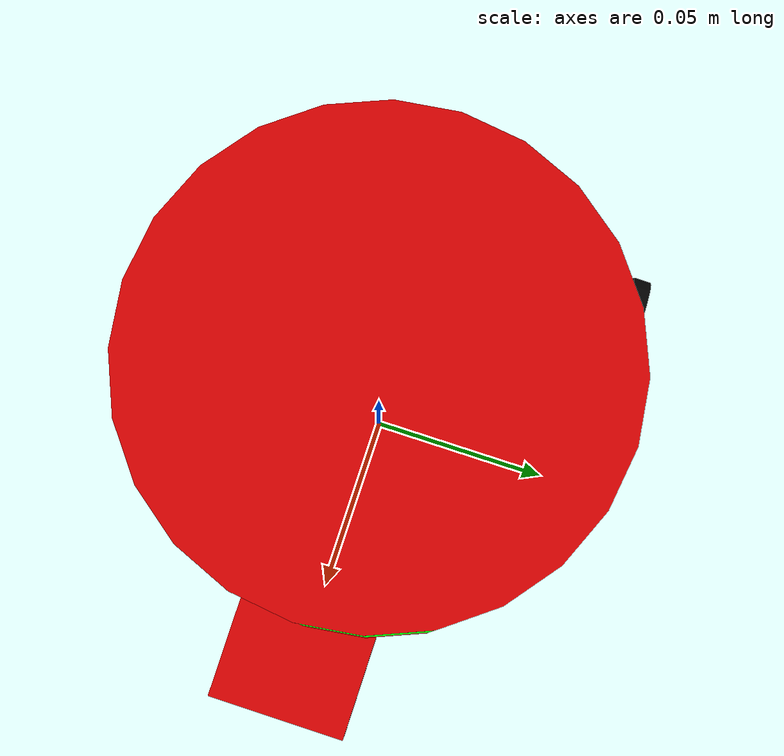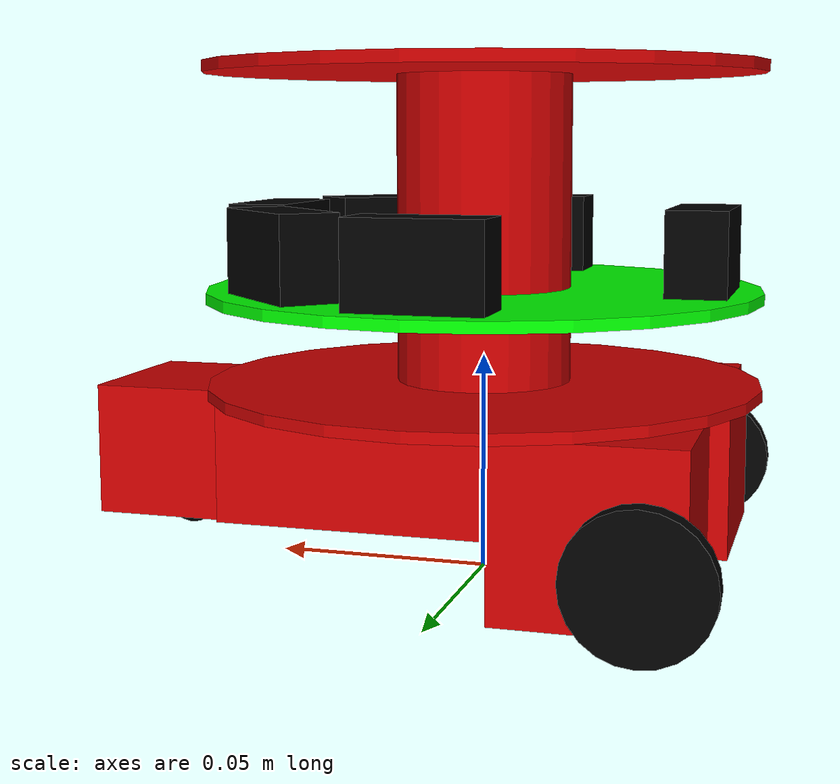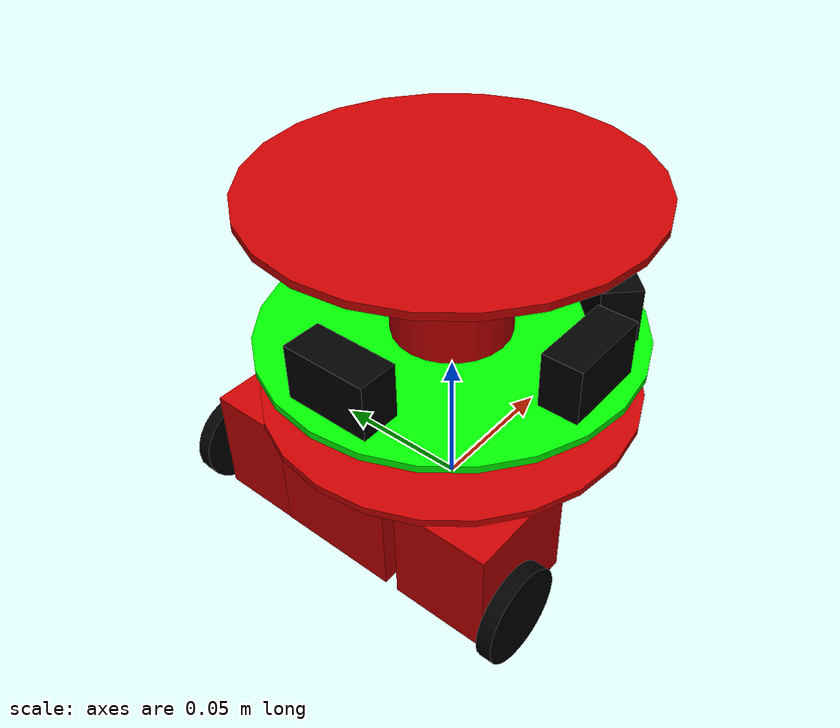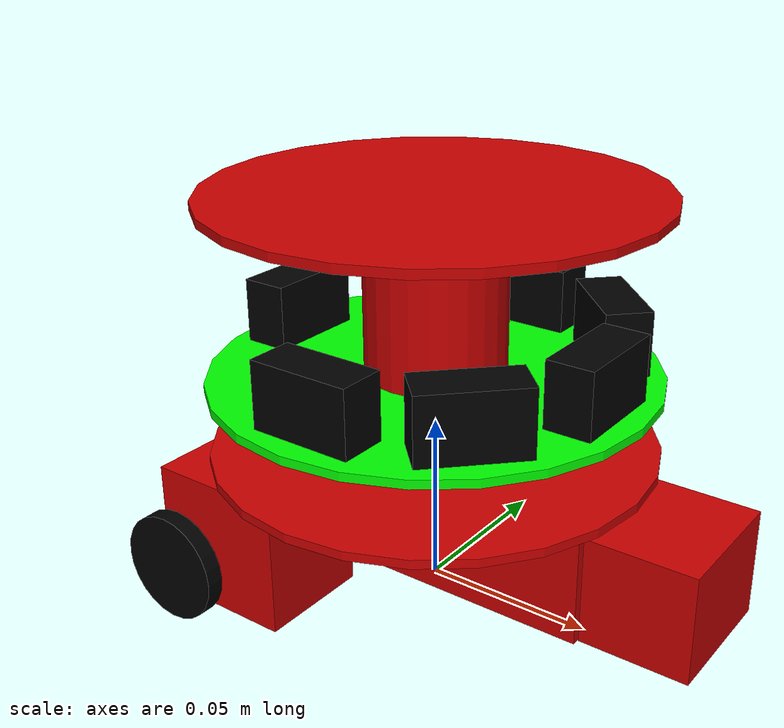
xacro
<?xml version="1.0"?>
<robot name="pheeno" xmlns:xacro="http://www.ros.org/wiki/xacro">

  <!-- Include other parts. -->
  <xacro:include filename="wheel.urdf.xacro"/>
  <xacro:include filename="pillar.urdf.xacro"/>
  <xacro:include filename="ir_sensor.urdf.xacro"/>

  <!-- Colors used in this robot -->
  <material name="Black">
    <color rgba="0.0 0.0 0.0 1.0"/>
  </material>

  <material name="Red">
    <color rgba="0.8 0.0 0.0 1.0"/>
  </material>

  <material name="White">
    <color rgba="1.0 1.0 1.0 1.0"/>
  </material>

  <material name="Green">
    <color rgba="0.0 1.0 0.0 1.0"/>
  </material>

  <!-- Universal Values -->
  <xacro:property name="PI" value="3.14159265358979"/>

  <!-- Property List (ff = fixed frame) -->
  <xacro:property name="base_plate_height" value="0.0025"/>
  <xacro:property name="base_plate_radius" value="0.0635"/>
  <xacro:property name="base_plate_mass" value=".035"/> <!-- kg -->
  <xacro:property name="base_plate_ff_x" value="0"/>
  <xacro:property name="base_plate_ff_y" value="0"/>
  <xacro:property name="base_plate_ff_z" value="0"/>
  <xacro:property name="base_plate_ff_roll" value="0"/> <!-- rad -->
  <xacro:property name="base_plate_ff_pitch" value="0"/> <!-- rad -->
  <xacro:property name="base_plate_ff_yaw" value="0"/> <!-- rad -->

  <xacro:property name="pcb_plate_height" value="0.0025"/>
  <xacro:property name="pcb_plate_radius" value="0.0635"/>
  <xacro:property name="pcb_plate_mass" value="0.085"/>
  <xacro:property name="pcb_plate_ff_x" value="0"/>
  <xacro:property name="pcb_plate_ff_y" value="0"/>
  <xacro:property name="pcb_plate_ff_z" value="0.0215"/>
  <xacro:property name="pcb_plate_ff_roll" value="0"/>
  <xacro:property name="pcb_plate_ff_pitch" value="0"/>
  <xacro:property name="pcb_plate_ff_yaw" value="0"/>

  <xacro:property name="top_plate_height" value="0.0025"/>
  <xacro:property name="top_plate_radius" value="0.0635"/>
  <xacro:property name="top_plate_mass" value="0.035"/>
  <xacro:property name="top_plate_ff_x" value="0"/>
  <xacro:property name="top_plate_ff_y" value="0"/>
  <xacro:property name="top_plate_ff_z" value="0.0723"/>
  <xacro:property name="top_plate_ff_roll" value="0"/>
  <xacro:property name="top_plate_ff_pitch" value="0"/>
  <xacro:property name="top_plate_ff_yaw" value="0"/>

  <!-- Pillar Bottom -->
  <xacro:property name="bottom_pillar_length" value="0.019"/>
  <xacro:property name="bottom_pillar_x" value="0"/>
  <xacro:property name="bottom_pillar_y" value="0"/>
  <xacro:property name="bottom_pillar_z" value="0.0108"/>
  <xacro:property name="bottom_pillar_roll" value="0"/>
  <xacro:property name="bottom_pillar_pitch" value="0"/>
  <xacro:property name="bottom_pillar_yaw" value="0"/>

  <!-- Pillar Top -->
  <xacro:property name="top_pillar_length" value="0.0483"/>
  <xacro:property name="top_pillar_x" value="0"/>
  <xacro:property name="top_pillar_y" value="0"/>
  <xacro:property name="top_pillar_z" value="0.047"/>
  <xacro:property name="top_pillar_roll" value="0"/>
  <xacro:property name="top_pillar_pitch" value="0"/>
  <xacro:property name="top_pillar_yaw" value="0"/>

  <xacro:property name="motor_plank_length" value="0.12"/>
  <xacro:property name="motor_plank_width" value="0.025"/>
  <xacro:property name="motor_plank_height" value="0.003"/>
  <xacro:property name="motor_plank_ff_x" value="-0.045"/>
  <xacro:property name="motor_plank_ff_y" value="0"/>
  <xacro:property name="motor_plank_ff_z" value="-0.003"/>
  <xacro:property name="motor_plank_ff_roll" value="0"/>
  <xacro:property name="motor_plank_ff_pitch" value="0"/>
  <xacro:property name="motor_plank_ff_yaw" value="${PI / 2}"/>

  <xacro:property name="battery_tray_length" value="0.117"/>
  <xacro:property name="battery_tray_width" value="0.042"/>
  <xacro:property name="battery_tray_height" value="0.0305"/>
  <xacro:property name="battery_tray_ff_x" value="0"/>
  <xacro:property name="battery_tray_ff_y" value="0"/>
  <xacro:property name="battery_tray_ff_z" value="-0.0165"/>
  <xacro:property name="battery_tray_ff_roll" value="0"/>
  <xacro:property name="battery_tray_ff_pitch" value="0"/>
  <xacro:property name="battery_tray_ff_yaw" value="0"/>

  <xacro:property name="motor_base_R_length" value="0.04"/>
  <xacro:property name="motor_base_R_width" value="0.033"/>
  <xacro:property name="motor_base_R_height" value="0.038"/>
  <xacro:property name="motor_base_R_ff_x" value="-0.0343"/>
  <xacro:property name="motor_base_R_ff_y" value="0.038"/>
  <xacro:property name="motor_base_R_ff_z" value="-0.0203"/>
  <xacro:property name="motor_base_R_ff_roll" value="0"/>
  <xacro:property name="motor_base_R_ff_pitch" value="0"/>
  <xacro:property name="motor_base_R_ff_yaw" value="0"/>

  <xacro:property name="motor_base_L_length" value="0.04"/>
  <xacro:property name="motor_base_L_width" value="0.033"/>
  <xacro:property name="motor_base_L_height" value="0.038"/>
  <xacro:property name="motor_base_L_ff_x" value="-0.0343"/>
  <xacro:property name="motor_base_L_ff_y" value="-0.038"/>
  <xacro:property name="motor_base_L_ff_z" value="-0.0203"/>
  <xacro:property name="motor_base_L_ff_roll" value="0"/>
  <xacro:property name="motor_base_L_ff_pitch" value="0"/>
  <xacro:property name="motor_base_L_ff_yaw" value="0"/>

  <xacro:property name="caster_base_length" value="0.0305"/>
  <xacro:property name="caster_base_width" value="0.0381"/>
  <xacro:property name="caster_base_height" value="0.0305"/>
  <xacro:property name="caster_base_ff_x" value="0.074"/>
  <xacro:property name="caster_base_ff_y" value="0"/>
  <xacro:property name="caster_base_ff_z" value="-0.0165"/>
  <xacro:property name="caster_base_ff_roll" value="0"/>
  <xacro:property name="caster_base_ff_pitch" value="0"/>
  <xacro:property name="caster_base_ff_yaw" value="0"/>

  <xacro:property name="caster_mass" value=".004"/>
  <xacro:property name="caster_radius" value="0.006"/>
  <xacro:property name="caster_ff_x" value="0"/>
  <xacro:property name="caster_ff_y" value="0"/>
  <xacro:property name="caster_ff_z" value="-0.0153"/>
  <xacro:property name="caster_ff_roll" value="${-PI/2}"/>
  <xacro:property name="caster_ff_pitch" value="0"/>
  <xacro:property name="caster_ff_yaw" value="0"/>

  <xacro:property name="ir_sensor_center_x" value="0.05"/>
  <xacro:property name="ir_sensor_center_y" value="0"/>
  <xacro:property name="ir_sensor_center_z" value="0.0322"/>
  <xacro:property name="ir_sensor_center_roll" value="0"/>
  <xacro:property name="ir_sensor_center_pitch" value="0"/>
  <xacro:property name="ir_sensor_center_yaw" value="0"/> <!-- PI/2 -->

  <xacro:property name="ir_sensor_back_x" value="-0.05"/>
  <xacro:property name="ir_sensor_back_y" value="0"/>
  <xacro:property name="ir_sensor_back_z" value="0.0322"/>
  <xacro:property name="ir_sensor_back_roll" value="0"/>
  <xacro:property name="ir_sensor_back_pitch" value="0"/>
  <xacro:property name="ir_sensor_back_yaw" value="${PI}"/> <!-- 3PI/2 -->

  <xacro:property name="ir_sensor_cr_x" value="0.0354"/>
  <xacro:property name="ir_sensor_cr_y" value="-0.0354"/>
  <xacro:property name="ir_sensor_cr_z" value="0.0322"/>
  <xacro:property name="ir_sensor_cr_roll" value="0"/>
  <xacro:property name="ir_sensor_cr_pitch" value="0"/>
  <xacro:property name="ir_sensor_cr_yaw" value="${-1 * PI / 4}"/>

  <xacro:property name="ir_sensor_cl_x" value="0.0354"/>
  <xacro:property name="ir_sensor_cl_y" value="0.0354"/>
  <xacro:property name="ir_sensor_cl_z" value="0.0322"/>
  <xacro:property name="ir_sensor_cl_roll" value="0"/>
  <xacro:property name="ir_sensor_cl_pitch" value="0"/>
  <xacro:property name="ir_sensor_cl_yaw" value="${PI / 4}"/>

  <xacro:property name="ir_sensor_right_x" value="0"/>
  <xacro:property name="ir_sensor_right_y" value="-0.05"/>
  <xacro:property name="ir_sensor_right_z" value="0.0322"/>
  <xacro:property name="ir_sensor_right_roll" value="0"/>
  <xacro:property name="ir_sensor_right_pitch" value="0"/>
  <xacro:property name="ir_sensor_right_yaw" value="${-PI / 2}"/>

  <xacro:property name="ir_sensor_left_x" value="0"/>
  <xacro:property name="ir_sensor_left_y" value="0.05"/>
  <xacro:property name="ir_sensor_left_z" value="0.0322"/>
  <xacro:property name="ir_sensor_left_roll" value="0"/>
  <xacro:property name="ir_sensor_left_pitch" value="0"/>
  <xacro:property name="ir_sensor_left_yaw" value="${PI / 2}"/>

  <!-- ########################## LINKS ################################ -->

  <!-- BASE FOOTPRINT -->
  <!-- This is a fictitious link (frame) that is on the ground right below base_link origin -->
  <link name="base_footprint">
    <inertial>
      <mass value="0.0001"/>
      <origin xyz="0 0 0"/>
      <inertia ixx="0.0001" ixy="0.0" ixz="0.0" iyy="0.0001" iyz="0.0" izz="0.0001"/>
    </inertial>
    <visual>
      <origin xyz="0 0 0" rpy="0 0 0"/>
      <geometry>
        <box size="0.001 0.001 0.001"/>
      </geometry>
    </visual>
  </link>

  <gazebo reference="base_footprint">
    <turnGravityOff>false</turnGravityOff>
  </gazebo>

  <joint name="base_footprint_joint" type="fixed">
    <origin xyz="0 0 0.04318" rpy="0 0 0"/>
    <parent link="base_footprint"/>
    <child link="base_plate_link"/>
  </joint>

  <!-- BASE PLATE -->
  <link name="base_plate_link">
    <visual>
      <material name="Red"/>
      <origin xyz="${base_plate_ff_x} ${base_plate_ff_y} ${base_plate_ff_z}" rpy="${base_plate_ff_roll} ${base_plate_ff_pitch} ${base_plate_ff_yaw}"/>
      <geometry>
        <cylinder length="${base_plate_height}" radius="${base_plate_radius}"/>
      </geometry>
    </visual>
    <inertial>
      <mass value="${base_plate_mass}"/>
      <origin xyz="${base_plate_ff_x} ${base_plate_ff_y} ${base_plate_ff_z}" rpy="${base_plate_ff_roll} ${base_plate_ff_pitch} ${base_plate_ff_yaw}"/>
      <cylinder_inertia m="${base_plate_mass}" r="${base_plate_radius}" h="${base_plate_height}"/>
    </inertial>
    <collision>
      <origin xyz="${base_plate_ff_x} ${base_plate_ff_y} ${base_plate_ff_z}" rpy="${base_plate_ff_roll} ${base_plate_ff_pitch} ${base_plate_ff_yaw}"/>
      <geometry>
        <cylinder length="${base_plate_height}" radius="${base_plate_radius}"/>
      </geometry>
    </collision>
  </link>

  <gazebo reference="base_plate_link">
    <material>Gazebo/Red</material>
  </gazebo>

  <joint name="base_link_to_battery_tray_joint" type="fixed">
    <origin xyz="0 0 0" rpy="0 0 0"/>
    <parent link="base_plate_link"/>
    <child link="battery_tray_link"/>
  </joint>

  <!-- PCB PLATE -->
  <link name="pcb_plate_link">
    <visual>
      <material name="Green"/>
      <origin xyz="${pcb_plate_ff_x} ${pcb_plate_ff_y} ${pcb_plate_ff_z}" rpy="${pcb_plate_ff_roll} ${pcb_plate_ff_pitch} ${pcb_plate_ff_yaw}"/>
      <geometry>
        <cylinder length="${pcb_plate_height}" radius="${pcb_plate_radius}"/>
      </geometry>
    </visual>
    <inertial>
      <mass value="${pcb_plate_mass}"/>
      <origin xyz="${pcb_plate_ff_x} ${pcb_plate_ff_y} ${pcb_plate_ff_z}" rpy="${pcb_plate_ff_roll} ${pcb_plate_ff_pitch} ${pcb_plate_ff_yaw}"/>
      <cylinder_inertia m="${pcb_plate_mass}" r="${pcb_plate_radius}" h="${pcb_plate_height}"/>
    </inertial>
    <collision>
      <origin xyz="${pcb_plate_ff_x} ${pcb_plate_ff_y} ${pcb_plate_ff_z}" rpy="${pcb_plate_ff_roll} ${pcb_plate_ff_pitch} ${pcb_plate_ff_yaw}"/>
      <geometry>
        <cylinder length="${pcb_plate_height}" radius="${pcb_plate_radius}"/>
      </geometry>
    </collision>
  </link>

  <gazebo reference="pcb_plate_link">
    <material>Gazebo/Green</material>
  </gazebo>

  <!-- TOP PLATE -->
  <link name="top_plate_link">
    <visual>
      <material name="Red"/>
      <origin xyz="${top_plate_ff_x} ${top_plate_ff_y} ${top_plate_ff_z}" rpy="${top_plate_ff_roll} ${top_plate_ff_pitch} ${top_plate_ff_yaw}"/>
      <geometry>
        <cylinder length="${top_plate_height}" radius="${top_plate_radius}"/>
      </geometry>
    </visual>
    <inertial>
      <mass value="${top_plate_mass}"/>
      <origin xyz="${top_plate_ff_x} ${top_plate_ff_y} ${top_plate_ff_z}" rpy="${top_plate_ff_roll} ${top_plate_ff_pitch} ${top_plate_ff_yaw}"/>
      <cylinder_inertia m="${top_plate_mass}" r="${top_plate_radius}" h="${top_plate_height}"/>
    </inertial>
    <collision>
      <origin xyz="${top_plate_ff_x} ${top_plate_ff_y} ${top_plate_ff_z}" rpy="${top_plate_ff_roll} ${top_plate_ff_pitch} ${top_plate_ff_yaw}"/>
      <geometry>
        <cylinder length="${top_plate_height}" radius="${top_plate_radius}"/>
      </geometry>
    </collision>
  </link>

  <gazebo reference="top_plate_link">
    <material>Gazebo/Red</material>
  </gazebo>

  <!-- CASTER PLANK -->
  <link name="battery_tray_link">
    <visual>
      <material name="Red"/>
      <origin xyz="${battery_tray_ff_x} ${battery_tray_ff_y} ${battery_tray_ff_z}" rpy="${battery_tray_ff_roll} ${battery_tray_ff_pitch} ${battery_tray_ff_yaw}"/>
      <geometry>
        <box size="${battery_tray_length} ${battery_tray_width} ${battery_tray_height}"/>
      </geometry>
    </visual>
    <collision>
      <origin xyz="${battery_tray_ff_x} ${battery_tray_ff_y} ${battery_tray_ff_z}" rpy="${battery_tray_ff_roll} ${battery_tray_ff_pitch} ${battery_tray_ff_yaw}"/>
      <geometry>
        <box size="${battery_tray_length} ${battery_tray_width} ${battery_tray_height}"/>
      </geometry>
    </collision>
  </link>

  <gazebo reference="battery_tray_link">
    <material>Gazebo/Red</material>
  </gazebo>

  <!-- MOTOR BASE R -->
  <link name="motor_base_R_link">
    <visual>
      <material name="Red"/>
      <origin xyz="${motor_base_R_ff_x} ${motor_base_R_ff_y} ${motor_base_R_ff_z}" rpy="${motor_base_R_ff_roll} ${motor_base_R_ff_pitch} ${motor_base_R_ff_yaw}"/>
      <geometry>
        <box size="${motor_base_R_length} ${motor_base_R_width} ${motor_base_R_height}"/>
      </geometry>
    </visual>
    <collision>
      <origin xyz="${motor_base_R_ff_x} ${motor_base_R_ff_y} ${motor_base_R_ff_z}" rpy="${motor_base_R_ff_roll} ${motor_base_R_ff_pitch} ${motor_base_R_ff_yaw}"/>
      <geometry>
        <box size="${motor_base_R_length} ${motor_base_R_width} ${motor_base_R_height}"/>
      </geometry>
    </collision>
  </link>

  <gazebo reference="motor_base_R_link">
    <material>Gazebo/Red</material>
  </gazebo>

  <joint name="motor_base_R_to_battery_tray_join" type="fixed">
    <parent link="battery_tray_link"/>
    <child link="motor_base_R_link"/>
    <origin xyz="0 0 0" rpy="0 0 0"/>
  </joint>

  <!-- MOTOR BASE L -->
  <link name="motor_base_L_link">
    <visual>
      <material name="Red"/>
      <origin xyz="${motor_base_L_ff_x} ${motor_base_L_ff_y} ${motor_base_L_ff_z}" rpy="${motor_base_L_ff_roll} ${motor_base_L_ff_pitch} ${motor_base_L_ff_yaw}"/>
      <geometry>
        <box size="${motor_base_L_length} ${motor_base_L_width} ${motor_base_L_height}"/>
      </geometry>
    </visual>
    <collision>
      <origin xyz="${motor_base_L_ff_x} ${motor_base_L_ff_y} ${motor_base_L_ff_z}" rpy="${motor_base_L_ff_roll} ${motor_base_L_ff_pitch} ${motor_base_L_ff_yaw}"/>
      <geometry>
        <box size="${motor_base_L_length} ${motor_base_L_width} ${motor_base_L_height}"/>
      </geometry>
    </collision>
  </link>

  <gazebo reference="motor_base_L_link">
    <material>Gazebo/Red</material>
  </gazebo>

  <joint name="motor_base_L_to_battery_tray_joint" type="fixed">
    <parent link="battery_tray_link"/>
    <child link="motor_base_L_link"/>
    <origin xyz="0 0 0" rpy="0 0 0"/>
  </joint>

  <!-- WHEELS -->
  <wheel lr="right" parent="base_plate_link" translateX="-0.72" translateY="-1" translateZ="-1" flipY="1"/>
  <wheel lr="left" parent="base_plate_link" translateX="-0.72" translateY="1" translateZ="-1" flipY="1"/>

  <!-- CASTER BASE -->
  <link name="caster_base_link">
    <visual>
      <material name="Red"/>
      <origin xyz="0 0 0" rpy="0 0 0"/>
      <geometry>
        <box size="${caster_base_length} ${caster_base_width} ${caster_base_height}"/>
      </geometry>
    </visual>
    <collision>
      <origin xyz="0 0 0" rpy="0 0 0"/>
      <geometry>
        <box size="${caster_base_length} ${caster_base_width} ${caster_base_height}"/>
      </geometry>
    </collision>
  </link>

  <gazebo reference="caster_base_link">
    <material>Gazebo/Red</material>
  </gazebo>

  <joint name="caster_base_to_battery_tray_joint" type="fixed">
    <parent link="battery_tray_link"/>
    <child link="caster_base_link"/>
    <origin xyz="${caster_base_ff_x} ${caster_base_ff_y} ${caster_base_ff_z}" rpy="${caster_base_ff_roll} ${caster_base_ff_pitch} ${caster_base_ff_yaw}"/>
  </joint>

  <!-- CASTER -->
  <link name="caster_link">
    <visual>
      <material name="Black"/>
      <origin xyz="0 0 0" rpy="${PI/2} 0 0"/>
      <geometry>
        <sphere radius="0.006"/>
      </geometry>
    </visual>
    <inertial>
      <mass value="${caster_mass}"/>
      <origin xyz="0 0 0"/>
      <inertia ixx="0.001" ixy="0.0" ixz="0.0" iyy="0.001" iyz="0.0" izz="0.001"/>
    </inertial>
    <collision>
      <origin xyz="0 0 0" rpy="${PI/2} 0 0"/>
      <geometry>
        <sphere radius="${caster_radius}"/>
      </geometry>
    </collision>
  </link>

  <gazebo reference="caster_link">
    <turnGravityOff>false</turnGravityOff>
    <material>Gazebo/Black</material>
  </gazebo>

  <joint name="caster_to_caster_base_joint" type="fixed">
    <parent link="caster_base_link"/>
    <child link="caster_link"/>
    <origin xyz="${caster_ff_x} ${caster_ff_y} ${caster_ff_z}" rpy="${caster_ff_roll} ${caster_ff_pitch} ${caster_ff_yaw}"/>
  </joint>

  <!-- PILLARS -->
  <pillar pos="bottom" len="${bottom_pillar_length}" x="${bottom_pillar_x}" y="${bottom_pillar_y}" z="${bottom_pillar_z}" roll="${bottom_pillar_roll}" pitch="${bottom_pillar_pitch}" yaw="${bottom_pillar_yaw}" par="base_plate_link" chi="pcb_plate_link"/>

  <pillar pos="top" len="${top_pillar_length}" x="${top_pillar_x}" y="${top_pillar_y}" z="${top_pillar_z}" roll="${top_pillar_roll}" pitch="${top_pillar_pitch}" yaw="${top_pillar_yaw}" par="pcb_plate_link" chi="top_plate_link"/>

  <!-- IR SENSOR -->
  <ir_sensor pos="center" x="${ir_sensor_center_x}" y="${ir_sensor_center_y}" z="${ir_sensor_center_z}" roll="${ir_sensor_center_roll}" pitch="${ir_sensor_center_pitch}" yaw="${ir_sensor_center_yaw}"/>

  <ir_sensor pos="back" x="${ir_sensor_back_x}" y="${ir_sensor_back_y}" z="${ir_sensor_back_z}" roll="${ir_sensor_back_roll}" pitch="${ir_sensor_back_pitch}" yaw="${ir_sensor_back_yaw}"/>

  <ir_sensor pos="cr" x="${ir_sensor_cr_x}" y="${ir_sensor_cr_y}" z="${ir_sensor_cr_z}" roll="${ir_sensor_cr_roll}" pitch="${ir_sensor_cr_pitch}" yaw="${ir_sensor_cr_yaw}"/>

  <ir_sensor pos="cl" x="${ir_sensor_cl_x}" y="${ir_sensor_cl_y}" z="${ir_sensor_cl_z}" roll="${ir_sensor_cl_roll}" pitch="${ir_sensor_cl_pitch}" yaw="${ir_sensor_cl_yaw}"/>

  <ir_sensor pos="right" x="${ir_sensor_right_x}" y="${ir_sensor_right_y}" z="${ir_sensor_right_z}" roll="${ir_sensor_right_roll}" pitch="${ir_sensor_right_pitch}" yaw="${ir_sensor_right_yaw}"/>

  <ir_sensor pos="left" x="${ir_sensor_left_x}" y="${ir_sensor_left_y}" z="${ir_sensor_left_z}" roll="${ir_sensor_left_roll}" pitch="${ir_sensor_left_pitch}" yaw="${ir_sensor_left_yaw}"/>

  <!-- DIFFERENTIAL DRIVE CONTROLLER -->
  <gazebo>
    <plugin name="differential_drive_controller" filename="libgazebo_ros_diff_drive.so">
      <rosDebugLevel>Debug</rosDebugLevel>
      <publishWheelTF>false</publishWheelTF>
      <publishTF>1</publishTF>
      <publishWheelJointState>false</publishWheelJointState>
      <alwaysOn>true</alwaysOn>
      <updateRate>100.0</updateRate>
      <leftJoint>left_wheel_joint</leftJoint>
      <rightJoint>right_wheel_joint</rightJoint>
      <wheelSeparation>${motor_plank_length}</wheelSeparation>
      <wheelDiameter>${2*wheel_radius}</wheelDiameter>
      <broadcastTF>1</broadcastTF>
      <wheelTorque>30</wheelTorque>
      <wheelAcceleration>1.8</wheelAcceleration>
      <commandTopic>cmd_vel</commandTopic>
      <odometryFrame>odom</odometryFrame>
      <odometryTopic>odom</odometryTopic>
      <robotBaseFrame>base_footprint</robotBaseFrame>
    </plugin>
  </gazebo>

</robot>

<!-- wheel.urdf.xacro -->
<robot name="wheel" xmlns:xacro="http://www.ros.org/wiki/xacro">
  <!-- Wheels -->
  <xacro:property name="wheel_radius" value="0.0155"/>
  <xacro:property name="wheel_height" value="0.005"/>
  <xacro:property name="wheel_mass" value="2.5"/>

  <xacro:property name="base_x_origin_to_wheel_origin" value="0.0635"/>
  <xacro:property name="base_y_origin_to_wheel_origin" value="0.06"/>
  <xacro:property name="base_z_origin_to_wheel_origin" value="0.0267"/>

  <xacro:macro name="cylinder_inertia" params="m r h">
    <inertia ixx="${m*(3*r*r+h*h)/12}" ixy="0" ixz="0" iyy="${m*(3*r*r+h*h)/12}" iyz="0" izz="${m*r*r/2}"/>
  </xacro:macro>

  <xacro:macro name="wheel" params="lr parent translateX translateY translateZ flipY">
    <link name="${lr}_wheel_link">
      <visual>
        <origin xyz="0 0 0" rpy="${flipY*PI/2} 0 0"/>
        <geometry>
          <cylinder length="${wheel_height}" radius="${wheel_radius}"/>
        </geometry>
        <material name="Black"/>
      </visual>
      <collision>
        <origin xyz="0 0 0" rpy="${flipY*PI/2} 0 0"/>
        <geometry>
          <cylinder length="${wheel_height}" radius="${wheel_radius}"/>
        </geometry>
      </collision>
      <inertial>
        <mass value="${wheel_mass}"/>
        <origin xyz="0 0 0"/>
        <cylinder_inertia m="${wheel_mass}" r="${wheel_radius}" h="${wheel_height}"/>
      </inertial>
    </link>

    <gazebo reference="${lr}_wheel_link">
      <mu1 value="1.0"/>
      <mu2 value="1.0"/>
      <kp value="10000000.0"/>
      <kd value="1.0"/>
      <fdir1 value="1 0 0"/>
      <material>Gazebo/Black</material>
      <turnGravityOff>false</turnGravityOff>
    </gazebo>

    <joint name="${lr}_wheel_joint" type="continuous">
      <parent link="${parent}"/>
      <child link="${lr}_wheel_link"/>
      <origin xyz="${translateX * base_x_origin_to_wheel_origin} ${translateY * base_y_origin_to_wheel_origin} ${translateZ * base_z_origin_to_wheel_origin}" rpy="0 0 0"/>
      <axis xyz="0 1 0" rpy="0 0 0"/>
      <limit effort="100" velocity="100"/>
      <joint_properties damping="0.0" friction="0.0"/>
    </joint>

    <!-- Transmission -->
    <transmission name="${lr}_wheel_joint_transmission">
      <type>transmission_interface/DifferentialTransmission</type>
      <joint name="${lr}_wheel_joint">
        <hardwareInterface>EffortJointInterface</hardwareInterface>
      </joint>
      <actuator name="${lr}_wheel_joint_motor">
        <hardwareInterface>EffortJointInterface</hardwareInterface>
        <mechanicalReduction>1</mechanicalReduction>
      </actuator>
    </transmission>
  </xacro:macro>

</robot>

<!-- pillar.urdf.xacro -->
<robot name="pillar" xmlns:xacro="http://www.ros.org/wiki/xacro">
  <!-- Pillar Properties -->
  <xacro:property name="pillar_radius" value=".02"/>
  <xacro:property name="pillar_mass" value="0.005"/>

  <!-- Pillar MACRO -->
  <xacro:macro name="pillar" params="pos len x y z roll pitch yaw par chi">
    <link name="${pos}_pillar_link">
      <visual>
        <origin xyz="${x} ${y} ${z}" rpy="${roll} ${pitch} ${yaw}"/>
        <geometry>
            <cylinder length="${len}" radius="${pillar_radius}"/>
        </geometry>
        <material name="Red"/>
      </visual>
      <collision>
        <origin xyz="${x} ${y} ${z}" rpy="${roll} ${pitch} ${yaw}"/>
        <geometry>
            <cylinder length="${len}" radius="${pillar_radius}"/>
        </geometry>
      </collision>
      <inertial>
        <mass value="${pillar_mass}"/>
        <origin xyz="${x} ${y} ${z}" rpy="${roll} ${pitch} ${yaw}"/>
        <cylinder_inertia m="${pillar_mass}" r="${pillar_radius}" h="${len}"/>
      </inertial>
    </link>

    <!-- Bottom Joint -->
    <joint name="${pos}_pillar_bottom_joint" type="fixed">
      <parent link="${par}"/>
      <child link="${pos}_pillar_link"/>
      <origin xyz="0 0 0" rpy="0 0 0"/>
    </joint>

    <!-- Top Joint -->
    <joint name="${pos}_pillar_top_joint" type="fixed">
      <parent link="${pos}_pillar_link"/>
      <child link="${chi}"/>
      <origin xyz="0 0 0" rpy="0 0 0"/>
    </joint>

    <gazebo reference="${pos}_pillar_link">
      <material>Gazebo/Red</material>
    </gazebo>

  </xacro:macro>

</robot>

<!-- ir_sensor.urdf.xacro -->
<robot name="ir_sensor" xmlns:xacro="http://www.ros.org/wiki/xacro">
  <!-- Sensor Properties -->
  <xacro:property name="ir_sensor_length" value="0.0135"/>
  <xacro:property name="ir_sensor_width" value="0.0295"/>
  <xacro:property name="ir_sensor_height" value="0.0189"/>
  <xacro:property name="ir_sensor_mass" value="0.003"/>
  <!-- kg -->

  <!-- Inertial MACRO -->
  <xacro:macro name="sensor_inertia" params="l w h">
    <inertia ixx="${(ir_sensor_mass*(h*h + l*l))/12}" ixy="0" ixz="0" iyy="${(ir_sensor_mass*(w*w + l*l))/12}" iyz="0" izz="${(ir_sensor_mass*(w*w + h*h))/12}"/>
  </xacro:macro>

  <!-- IR Sensor MACRO -->
  <xacro:macro name="ir_sensor" params="pos x y z roll pitch yaw">
    <link name="ir_sensor_${pos}_link">
      <visual>
        <origin xyz="0 0 0" rpy="0 0 0"/>
        <geometry>
          <box size="${ir_sensor_length} ${ir_sensor_width} ${ir_sensor_height}"/>
        </geometry>
        <material name="Black"/>
      </visual>
      <collision>
          <origin xyz="0 0 0" rpy="0 0 0"/>
          <geometry>
              <box size="${ir_sensor_length} ${ir_sensor_width} ${ir_sensor_height}"/>
          </geometry>
      </collision>
      <inertial>
          <mass value="${ir_sensor_mass}"/>
          <origin xyz="0 0 0" rpy="0 0 0"/>
          <sensor_inertia l="${ir_sensor_length}" w="${ir_sensor_width}" h="${ir_sensor_height}"/>
      </inertial>
    </link>

    <!-- Connecting joint on PCB -->
    <joint name="ir_sensor_${pos}_joint" type="fixed">
      <parent link="pcb_plate_link"/>
      <child link="ir_sensor_${pos}_link"/>
      <origin xyz="${x} ${y} ${z}" rpy="${roll} ${pitch} ${yaw}"/>
      <axis xyz="0 1 0"/>
    </joint>

    <!-- IR Sensor Gazebo Reference -->
    <gazebo reference="ir_sensor_${pos}_link">
      <material>Gazebo/Black</material>
      <turnGravityOff>false</turnGravityOff>
      <sensor type="ray" name="ir_sensor_${pos}">
        <pose>0 0 0 0 0 0</pose>
        <visualize>true</visualize>
        <update_rate>40</update_rate>
        <ray>
          <scan>
            <horizontal>
              <samples>720</samples>
              <resolution>1</resolution>
              <min_angle>${-PI/20}</min_angle>
              <max_angle>${PI/20}</max_angle>
            </horizontal>
          </scan>
          <range>
            <min>0.04</min>
            <max>0.30</max>
            <resolution>0.001</resolution>
          </range>
        </ray>
        <plugin name="gazebo_ros_ir_sensor_${pos}_controller" filename="libgazebo_ros_ir_sensor.so">
          <topicName>scan_${pos}</topicName>
          <frameName>ir_sensor_${pos}_link</frameName>
        </plugin>
      </sensor>
    </gazebo>

  </xacro:macro>

</robot>
